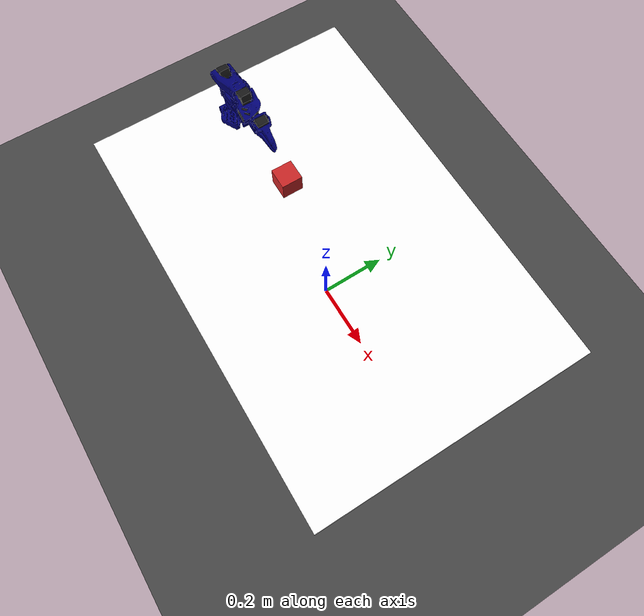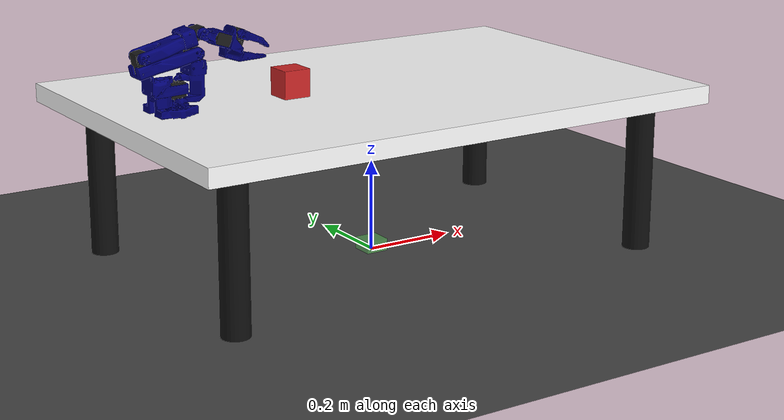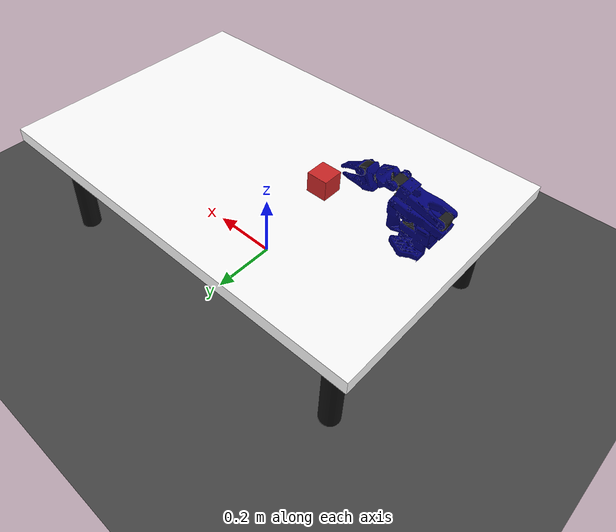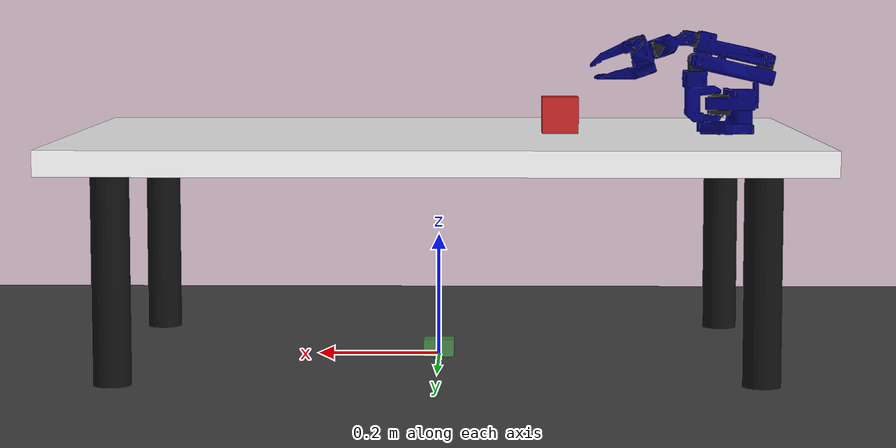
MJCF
<mujoco model="so100">
  <compiler angle="radian" meshdir="assets" texturedir="assets" autolimits="true"/>
  <option integrator="implicitfast" impratio="50" cone="elliptic" noslip_iterations="3"/>

  <default>
    <default class="so100">
      <joint damping="1" frictionloss="0.1" armature="0.005"/>
      <position kp="50"/>
    </default>
    <default class="sts3215">
      <geom contype="0" conaffinity="0"/>
      <joint damping="0.60" frictionloss="0.052" armature="0.028"/>
      <position kp="17.8"/>
    </default>
    <default class="backlash">
      <joint damping="0.01" frictionloss="0" armature="0.01" limited="true" range="-0.008726646259971648 0.008726646259971648"/>
    </default>
    <default class="visual">
      <geom type="mesh" contype="0" conaffinity="0" group="2"/>
    </default>
    <default class="collision">
      <geom condim="4" contype="1" conaffinity="1" priority="1" group="3" solref="0.001 1" solimp="0.9 0.95 0.001" friction="4 0.8 0.01"/>
    </default>
    <default class="collision_robot">
      <geom condim="4" contype="2" conaffinity="1" priority="1" group="3" solref="0.01 1" solimp="0.9 0.95 0.001" friction="4 0.8 0.01" />
    </default>
  </default>

  <worldbody>
    <!-- Floor & Light-->
    <light pos="0 0 3.5" dir="0 0 -1" directional="true" />
    <geom name="floor" size="0 0 0.05" pos="0 0 0" type="plane" material="groundplane" />
    <!-- Table -->
    <body name="table_base" pos="0 0 0" >
      <geom name="table_top_visual" type="box" size="0.6 0.4 0.02" pos="0 0 0.35" material="default_mtl" class="visual"/>
      <geom name="table_leg1_visual" type="cylinder" size="0.03 0.17" pos="0.5 0.3 0.17" material="shiny_black" class="visual"/>
      <geom name="table_leg2_visual" type="cylinder" size="0.03 0.17" pos="-0.5 0.3 0.17" material="shiny_black" class="visual"/>
      <geom name="table_leg3_visual" type="cylinder" size="0.03 0.17" pos="0.5 -0.3 0.17" material="shiny_black" class="visual"/>
      <geom name="table_leg4_visual" type="cylinder" size="0.03 0.17" pos="-0.5 -0.3 0.17" material="shiny_black" class="visual"/>
      <geom name="table_top_collision" type="box" size="0.6 0.4 0.02" pos="0 0 0.35" class="collision"/>
      <geom name="table_leg1_collision" type="cylinder" size="0.03 0.17" pos="0.5 0.3 0.17" class="collision"/>
      <geom name="table_leg2_collision" type="cylinder" size="0.03 0.17" pos="-0.5 0.3 0.17" class="collision"/>
      <geom name="table_leg3_collision" type="cylinder" size="0.03 0.17" pos="0.5 -0.3 0.17" class="collision"/>
      <geom name="table_leg4_collision" type="cylinder" size="0.03 0.17" pos="-0.5 -0.3 0.17" class="collision"/>
    </body>
    <!-- Object -->
    <body name="kfs" pos="-0.2 0 0.4">
      <joint type="free" damping="1e-4"/>
      <inertial pos="0 0 0" mass="0.05" diaginertia="0.0002 0.0002 0.0002"/>
      <geom class="visual"  mesh="kfs" material="kfs" />
      <geom class="collision"  type="box" size="0.03 0.03 0.03"/>
    </body>
    <!-- Arm target mocap -->
    <body name="arm_target" pos="0 0 0" quat="1 0 0 0" mocap="true">
      <inertial pos="0 0 0" mass="1e-3" diaginertia="1e-5 1e-5 1e-5"/>
      <geom name="arm_target_box" type="box" size="0.025 0.025 0.025" class="visual" rgba="0.4 1.0 0.4 0.4"/>
      <geom name="arm_target_x_arrow" type="cylinder" pos="0.03 0 0" euler="0 1.5708 0" size=".002 0.03" class="visual" rgba="1 0 0 .2"/>
      <geom name="arm_target_y_arrow" type="cylinder" pos="0 0.03 0" euler="1.5708 0 0" size=".002 0.03" class="visual" rgba="0 1 0 .2"/>
      <geom name="arm_target_z_arrow" type="cylinder" pos="0 0 0.03" euler="0 0 0" size=".002 0.03" class="visual" rgba="0 0 1 .2"/>
    </body>
    <!-- Robot -->
    <body name="base" childclass="so100" pos="-0.5 0 0.37" euler="0 0 1.5708">
      <geom name="base_collision" type="mesh" mesh="collision_Base" class="collision_robot" />
      <geom name="base_visual_0" type="mesh" mesh="base_Base" material="3d_printed" class="visual" />
      <geom name="base_visual_1" type="mesh" mesh="base_Base_Motor" material="sts3215" class="visual" />
      <body name="shoulder" pos="0 -0.0452 0.0165" quat="0.7071 0.7071 0 0">
        <inertial pos="-9.07886e-05 0.0590972 0.031089" mass="0.119226" diaginertia="5.94278e-05 5.89975e-05 3.13712e-05" />
        <joint name="shoulder_pan" type="hinge" range="-2 2" axis="0 1 0" class="sts3215" />
        <geom name="shoulder_collision" type="mesh" mesh="collision_Rotation_Pitch" class="collision_robot" />
        <geom name="shoulder_visual_0" type="mesh" mesh="shoulder_Rotation_Pitch" material="3d_printed" class="visual" />
        <geom name="shoulder_visual_1" type="mesh" mesh="shoulder_Rotation_Pitch_Motor" material="sts3215" class="visual" />
        <body name="upper_arm" pos="0 0.1025 0.0306" quat="0.6216 -0.7833 0 0">
          <inertial pos="-1.72052e-05 0.0701802 0.00310545" mass="0.162409" diaginertia="0.000213312 0.000167164 7.01522e-05" />
          <joint name="shoulder_lift" type="hinge" range="0 3.5" axis="1 0 0" class="sts3215"/>
          <geom name="upper_arm_collision" type="mesh" mesh="collision_Upper_Arm" class="collision_robot" />
          <geom name="upper_arm_visual_0" type="mesh" mesh="upper_arm_Upper_Arm" material="3d_printed" class="visual" />
          <geom name="upper_arm_visual_1" type="mesh" mesh="upper_arm_Upper_Arm_Motor" material="sts3215" class="visual" />
          <body name="lower_arm" pos="0 0.11257 0.028" quat="0.7071 0.7071 0 0">
            <inertial pos="-0.00339604 0.00137796 0.0768007" mass="0.147968" diaginertia="0.000138803 0.000107748 4.84242e-05" />
            <joint name="elbow_flex" type="hinge" range="-3.14158 0" axis="1 0 0" class="sts3215" />
            <geom name="lower_arm_collision" type="mesh" mesh="collision_Lower_Arm" class="collision_robot" />
            <geom name="lower_arm_visual_0" type="mesh" mesh="lower_arm_Lower_Arm" material="3d_printed" class="visual" />
            <geom name="lower_arm_visual_1" type="mesh" mesh="lower_arm_Lower_Arm_Motor" material="sts3215" class="visual" />
            <body name="wrist" pos="0 0.0052 0.1349" quat="0.8776 -0.4794 0 0">
              <inertial pos="-0.00852653 -0.0352279 -2.34622e-05" mass="0.0661321" diaginertia="3.45403e-05 2.39041e-05 1.94704e-05" />
              <joint name="wrist_flex" type="hinge" range="-2.5 1.2" axis="1 0 0" class="sts3215" />
              <geom name="wrist_collision" type="mesh" mesh="collision_Wrist_Pitch_Roll" class="collision_robot" />
              <geom name="wrist_visual_0" type="mesh" mesh="wrist_Wrist_Pitch_Roll" material="3d_printed" class="visual" />
              <geom name="wrist_visual_1" type="mesh" mesh="wrist_Wrist_Pitch_Roll_Motor" material="sts3215" class="visual" />
              <body name="gripper" pos="0 -0.0601 0" quat="0.7071 0 0.7071 0">
                <inertial pos="0.00552377 -0.0280167 0.000483583" mass="0.0929859" diaginertia="5.03136e-05 4.64098e-05 2.72961e-05" />
                <joint name="wrist_roll" type="hinge" range="-3.14158 3.14158" axis="0 1 0" class="sts3215" />
                <geom type="mesh" class="collision" mesh="Fixed_Jaw_part_0" />
                <geom type="mesh" class="collision" mesh="Fixed_Jaw_part_1" />
                <geom type="mesh" class="collision" mesh="Fixed_Jaw_part_2" />
                <geom type="mesh" class="collision" mesh="Fixed_Jaw_part_3" />
                <geom type="mesh" class="collision" mesh="Fixed_Jaw_part_4" />
                <geom type="mesh" class="collision" mesh="Fixed_Jaw_part_5" />
                <geom type="mesh" class="collision" mesh="Fixed_Jaw_part_6" />
                <geom type="mesh" class="collision" mesh="Fixed_Jaw_part_7" />
                <geom type="mesh" class="collision" mesh="Fixed_Jaw_part_8" />
                <geom type="mesh" class="collision" mesh="Fixed_Jaw_part_9" />
                <geom type="mesh" class="collision" mesh="Fixed_Jaw_part_10" />
                <geom type="mesh" class="collision" mesh="Fixed_Jaw_part_11" />
                <geom type="mesh" class="collision" mesh="Fixed_Jaw_part_12" />
                <geom type="mesh" class="collision" mesh="Fixed_Jaw_part_13" />
                <geom type="mesh" class="collision" mesh="Fixed_Jaw_part_14" />
                <geom type="mesh" class="collision" mesh="Fixed_Jaw_part_15" />
                <geom type="mesh" class="collision" mesh="Fixed_Jaw_part_16" />
                <geom type="mesh" class="collision" mesh="Fixed_Jaw_part_17" />
                <geom type="mesh" class="collision" mesh="Fixed_Jaw_part_18" />
                <geom type="mesh" class="collision" mesh="Fixed_Jaw_part_19" />
                <geom type="mesh" class="collision" mesh="Fixed_Jaw_part_20" />
                <geom type="mesh" class="collision" mesh="Fixed_Jaw_part_21" />
                <geom type="mesh" class="collision" mesh="Fixed_Jaw_part_22" />
                <geom type="mesh" class="collision" mesh="Fixed_Jaw_part_23" />
                <geom type="mesh" class="collision" mesh="Fixed_Jaw_part_24" />
                <geom type="mesh" class="collision" mesh="Fixed_Jaw_part_25" />
                <geom type="mesh" class="collision" mesh="Fixed_Jaw_part_26" />
                <geom type="mesh" class="collision" mesh="Fixed_Jaw_part_27" />
                <geom type="mesh" class="collision" mesh="Fixed_Jaw_part_28" />
                <geom type="mesh" class="collision" mesh="Fixed_Jaw_part_29" />
                <geom type="mesh" class="collision" mesh="Fixed_Jaw_part_30" />
                <geom type="mesh" class="collision" mesh="Fixed_Jaw_part_31" />
                <geom type="mesh" class="collision" mesh="Fixed_Jaw_part_32" />
                <geom type="mesh" class="collision" mesh="Fixed_Jaw_part_33" />
                <geom type="mesh" class="collision" mesh="Fixed_Jaw_part_34" />
                <geom type="mesh" class="collision" mesh="Fixed_Jaw_part_35" />
                <geom type="mesh" class="collision" mesh="Fixed_Jaw_part_36" />
                <geom type="mesh" class="collision" mesh="Fixed_Jaw_part_37" />
                <geom type="mesh" class="collision" mesh="Fixed_Jaw_part_38" />
                <geom type="mesh" class="collision" mesh="Fixed_Jaw_part_39" />
                <geom type="mesh" class="collision" mesh="Fixed_Jaw_part_40" />
                <geom type="mesh" class="collision" mesh="Fixed_Jaw_part_41" />
                <geom type="mesh" class="collision" mesh="Fixed_Jaw_part_42" />
                <geom type="mesh" class="collision" mesh="Fixed_Jaw_part_43" />
                <geom name="gripper_visual_0" type="mesh" mesh="gripper_Fixed_Jaw" material="3d_printed" class="visual" />
                <geom name="gripper_visual_1" type="mesh" mesh="gripper_Fixed_Jaw_Motor" material="sts3215" class="visual" />
                <site group="3" name="gripperframe" pos="0.0 -0.1 0.0" euler="0 -1.5708 -1.5708" rgba="0.2 0.8 0.2 0.6"/>
                <body name="jaw" pos="-0.0202 -0.0244 0" quat="0 0 1 0">
                  <inertial pos="-0.00161745 -0.0303473 0.000449646" mass="0.0202444" diaginertia="1.11265e-05 8.99651e-06 2.99548e-06" />
                  <joint name="gripper" type="hinge" range="-0.2 2.0" axis="0 0 1" class="sts3215" />
                  <geom name="jaw_visual" type="mesh" mesh="jaw_Moving_Jaw" material="3d_printed" class="visual" />
                  <geom type="mesh" class="collision" mesh="Moving_Jaw_part_0" />
                  <geom type="mesh" class="collision" mesh="Moving_Jaw_part_1" />
                  <geom type="mesh" class="collision" mesh="Moving_Jaw_part_2" />
                  <geom type="mesh" class="collision" mesh="Moving_Jaw_part_3" />
                  <geom type="mesh" class="collision" mesh="Moving_Jaw_part_4" />
                  <geom type="mesh" class="collision" mesh="Moving_Jaw_part_5" />
                  <geom type="mesh" class="collision" mesh="Moving_Jaw_part_6" />
                  <geom type="mesh" class="collision" mesh="Moving_Jaw_part_7" />
                  <geom type="mesh" class="collision" mesh="Moving_Jaw_part_8" />
                  <geom type="mesh" class="collision" mesh="Moving_Jaw_part_9" />
                  <geom type="mesh" class="collision" mesh="Moving_Jaw_part_10" />
                  <geom type="mesh" class="collision" mesh="Moving_Jaw_part_11" />
                  <geom type="mesh" class="collision" mesh="Moving_Jaw_part_12" />
                  <geom type="mesh" class="collision" mesh="Moving_Jaw_part_13" />
                  <geom type="mesh" class="collision" mesh="Moving_Jaw_part_14" />
                  <geom type="mesh" class="collision" mesh="Moving_Jaw_part_15" />
                  <geom type="mesh" class="collision" mesh="Moving_Jaw_part_16" />
                  <geom type="mesh" class="collision" mesh="Moving_Jaw_part_17" />
                  <geom type="mesh" class="collision" mesh="Moving_Jaw_part_18" />
                  <geom type="mesh" class="collision" mesh="Moving_Jaw_part_19" />
                  <geom type="mesh" class="collision" mesh="Moving_Jaw_part_20" />
                  <geom type="mesh" class="collision" mesh="Moving_Jaw_part_21" />
                  <geom type="mesh" class="collision" mesh="Moving_Jaw_part_22" />
                  <geom type="mesh" class="collision" mesh="Moving_Jaw_part_23" />
                </body>
              </body>
            </body>
          </body>
        </body>
      </body>
    </body>
  </worldbody>

  <asset>
    <material name="3d_printed" rgba="0 0 0.45 1.0" />
    <material name="sts3215" rgba="0.1 0.1 0.1 1.0" />
    <mesh name="collision_Base" file="Base.stl" />
    <mesh name="base_Base" file="Base.stl" />
    <mesh name="base_Base_Motor" file="Base_Motor.stl" />
    <mesh name="collision_Rotation_Pitch" file="Rotation_Pitch.stl" />
    <mesh name="shoulder_Rotation_Pitch" file="Rotation_Pitch.stl" />
    <mesh name="shoulder_Rotation_Pitch_Motor" file="Rotation_Pitch_Motor.stl" />
    <mesh name="collision_Upper_Arm" file="Upper_Arm.stl" />
    <mesh name="upper_arm_Upper_Arm" file="Upper_Arm.stl" />
    <mesh name="upper_arm_Upper_Arm_Motor" file="Upper_Arm_Motor.stl" />
    <mesh name="collision_Lower_Arm" file="Lower_Arm.stl" />
    <mesh name="lower_arm_Lower_Arm" file="Lower_Arm.stl" />
    <mesh name="lower_arm_Lower_Arm_Motor" file="Lower_Arm_Motor.stl" />
    <mesh name="collision_Wrist_Pitch_Roll" file="Wrist_Pitch_Roll.stl" />
    <mesh name="wrist_Wrist_Pitch_Roll" file="Wrist_Pitch_Roll.stl" />
    <mesh name="wrist_Wrist_Pitch_Roll_Motor" file="Wrist_Pitch_Roll_Motor.stl" />
    <mesh name="gripper_Fixed_Jaw" file="Fixed_Jaw.stl" />
    <mesh name="gripper_Fixed_Jaw_Motor" file="Fixed_Jaw_Motor.stl" />
    <mesh name="jaw_Moving_Jaw" file="Moving_Jaw.stl" />
    <texture type="skybox" file="desert.png" gridsize="3 4" gridlayout=".U..LFRB.D.."/>
    <texture type="2d" name="groundplane" builtin="checker" mark="edge" rgb1="0.3 0.3 0.3" rgb2="0.25 0.25 0.25" markrgb="0.1 0.1 0.1" width="300" height="300" />
    <material name="groundplane" texture="groundplane" texuniform="true" texrepeat="2 2" reflectance="0.3" />
    <material name="default_mtl" specular="0.5" shininess="0.5" rgba="1 1 1 1.0"/>
    <material name="shiny_black" specular="0.12999999523163" shininess="0.07" rgba="0.0599999986589 0.0599999986589 0.0599999986589 1.0"/>
    <material name="kfs" specular="0.5" shininess="0.341747925" texture="kfs"/>
    <texture type="2d" name="kfs" file="redR1KFS.png"/>
    <mesh name="kfs" file="kfs_01.obj" scale="0.17 0.17 0.17"/>
    <mesh name="Moving_Jaw_part_0" file="Moving_Jaw/part_0.obj" />
    <mesh name="Moving_Jaw_part_1" file="Moving_Jaw/part_1.obj" />
    <mesh name="Moving_Jaw_part_2" file="Moving_Jaw/part_2.obj" />
    <mesh name="Moving_Jaw_part_3" file="Moving_Jaw/part_3.obj" />
    <mesh name="Moving_Jaw_part_4" file="Moving_Jaw/part_4.obj" />
    <mesh name="Moving_Jaw_part_5" file="Moving_Jaw/part_5.obj" />
    <mesh name="Moving_Jaw_part_6" file="Moving_Jaw/part_6.obj" />
    <mesh name="Moving_Jaw_part_7" file="Moving_Jaw/part_7.obj" />
    <mesh name="Moving_Jaw_part_8" file="Moving_Jaw/part_8.obj" />
    <mesh name="Moving_Jaw_part_9" file="Moving_Jaw/part_9.obj" />
    <mesh name="Moving_Jaw_part_10" file="Moving_Jaw/part_10.obj" />
    <mesh name="Moving_Jaw_part_11" file="Moving_Jaw/part_11.obj" />
    <mesh name="Moving_Jaw_part_12" file="Moving_Jaw/part_12.obj" />
    <mesh name="Moving_Jaw_part_13" file="Moving_Jaw/part_13.obj" />
    <mesh name="Moving_Jaw_part_14" file="Moving_Jaw/part_14.obj" />
    <mesh name="Moving_Jaw_part_15" file="Moving_Jaw/part_15.obj" />
    <mesh name="Moving_Jaw_part_16" file="Moving_Jaw/part_16.obj" />
    <mesh name="Moving_Jaw_part_17" file="Moving_Jaw/part_17.obj" />
    <mesh name="Moving_Jaw_part_18" file="Moving_Jaw/part_18.obj" />
    <mesh name="Moving_Jaw_part_19" file="Moving_Jaw/part_19.obj" />
    <mesh name="Moving_Jaw_part_20" file="Moving_Jaw/part_20.obj" />
    <mesh name="Moving_Jaw_part_21" file="Moving_Jaw/part_21.obj" />
    <mesh name="Moving_Jaw_part_22" file="Moving_Jaw/part_22.obj" />
    <mesh name="Moving_Jaw_part_23" file="Moving_Jaw/part_23.obj" />
    <mesh name="Fixed_Jaw_part_0" file="Fixed_Jaw/part_0.obj" />
    <mesh name="Fixed_Jaw_part_1" file="Fixed_Jaw/part_1.obj" />
    <mesh name="Fixed_Jaw_part_2" file="Fixed_Jaw/part_2.obj" />
    <mesh name="Fixed_Jaw_part_3" file="Fixed_Jaw/part_3.obj" />
    <mesh name="Fixed_Jaw_part_4" file="Fixed_Jaw/part_4.obj" />
    <mesh name="Fixed_Jaw_part_5" file="Fixed_Jaw/part_5.obj" />
    <mesh name="Fixed_Jaw_part_6" file="Fixed_Jaw/part_6.obj" />
    <mesh name="Fixed_Jaw_part_7" file="Fixed_Jaw/part_7.obj" />
    <mesh name="Fixed_Jaw_part_8" file="Fixed_Jaw/part_8.obj" />
    <mesh name="Fixed_Jaw_part_9" file="Fixed_Jaw/part_9.obj" />
    <mesh name="Fixed_Jaw_part_10" file="Fixed_Jaw/part_10.obj" />
    <mesh name="Fixed_Jaw_part_11" file="Fixed_Jaw/part_11.obj" />
    <mesh name="Fixed_Jaw_part_12" file="Fixed_Jaw/part_12.obj" />
    <mesh name="Fixed_Jaw_part_13" file="Fixed_Jaw/part_13.obj" />
    <mesh name="Fixed_Jaw_part_14" file="Fixed_Jaw/part_14.obj" />
    <mesh name="Fixed_Jaw_part_15" file="Fixed_Jaw/part_15.obj" />
    <mesh name="Fixed_Jaw_part_16" file="Fixed_Jaw/part_16.obj" />
    <mesh name="Fixed_Jaw_part_17" file="Fixed_Jaw/part_17.obj" />
    <mesh name="Fixed_Jaw_part_18" file="Fixed_Jaw/part_18.obj" />
    <mesh name="Fixed_Jaw_part_19" file="Fixed_Jaw/part_19.obj" />
    <mesh name="Fixed_Jaw_part_20" file="Fixed_Jaw/part_20.obj" />
    <mesh name="Fixed_Jaw_part_21" file="Fixed_Jaw/part_21.obj" />
    <mesh name="Fixed_Jaw_part_22" file="Fixed_Jaw/part_22.obj" />
    <mesh name="Fixed_Jaw_part_23" file="Fixed_Jaw/part_23.obj" />
    <mesh name="Fixed_Jaw_part_24" file="Fixed_Jaw/part_24.obj" />
    <mesh name="Fixed_Jaw_part_25" file="Fixed_Jaw/part_25.obj" />
    <mesh name="Fixed_Jaw_part_26" file="Fixed_Jaw/part_26.obj" />
    <mesh name="Fixed_Jaw_part_27" file="Fixed_Jaw/part_27.obj" />
    <mesh name="Fixed_Jaw_part_28" file="Fixed_Jaw/part_28.obj" />
    <mesh name="Fixed_Jaw_part_29" file="Fixed_Jaw/part_29.obj" />
    <mesh name="Fixed_Jaw_part_30" file="Fixed_Jaw/part_30.obj" />
    <mesh name="Fixed_Jaw_part_31" file="Fixed_Jaw/part_31.obj" />
    <mesh name="Fixed_Jaw_part_32" file="Fixed_Jaw/part_32.obj" />
    <mesh name="Fixed_Jaw_part_33" file="Fixed_Jaw/part_33.obj" />
    <mesh name="Fixed_Jaw_part_34" file="Fixed_Jaw/part_34.obj" />
    <mesh name="Fixed_Jaw_part_35" file="Fixed_Jaw/part_35.obj" />
    <mesh name="Fixed_Jaw_part_36" file="Fixed_Jaw/part_36.obj" />
    <mesh name="Fixed_Jaw_part_37" file="Fixed_Jaw/part_37.obj" />
    <mesh name="Fixed_Jaw_part_38" file="Fixed_Jaw/part_38.obj" />
    <mesh name="Fixed_Jaw_part_39" file="Fixed_Jaw/part_39.obj" />
    <mesh name="Fixed_Jaw_part_40" file="Fixed_Jaw/part_40.obj" />
    <mesh name="Fixed_Jaw_part_41" file="Fixed_Jaw/part_41.obj" />
    <mesh name="Fixed_Jaw_part_42" file="Fixed_Jaw/part_42.obj" />
    <mesh name="Fixed_Jaw_part_43" file="Fixed_Jaw/part_43.obj" />
  </asset>

  <actuator>
    <position class="sts3215" name="shoulder_pan" joint="shoulder_pan" forcerange="-3.35 3.35" ctrlrange="-2 2"/>
    <position class="sts3215" name="shoulder_lift" joint="shoulder_lift" forcerange="-3.35 3.35" ctrlrange="0 3.5"/>
    <position class="sts3215" name="elbow_flex" joint="elbow_flex" forcerange="-3.35 3.35" ctrlrange="-3.14158 0"/>
    <position class="sts3215" name="wrist_flex" joint="wrist_flex" forcerange="-3.35 3.35" ctrlrange="2.5 1.2"/>
    <position class="sts3215" name="wrist_roll" joint="wrist_roll" forcerange="-3.35 3.35" ctrlrange="-3.14158 3.14158"/>
    <position class="sts3215" name="gripper" joint="gripper" forcerange="-10.35 10.35" ctrlrange="-0.2 2.0"/>
  </actuator>

  <visual>
    <rgba haze="0.15 0.25 0.35 1" />
  </visual>
</mujoco>
